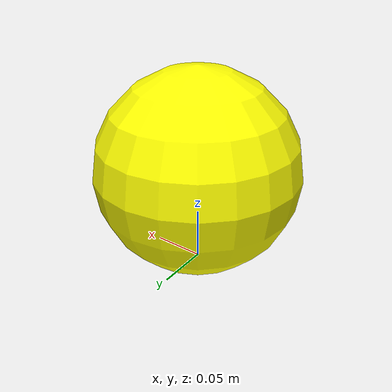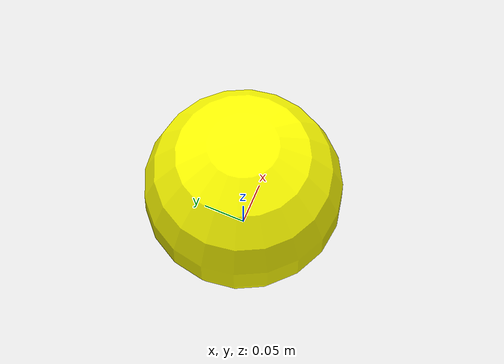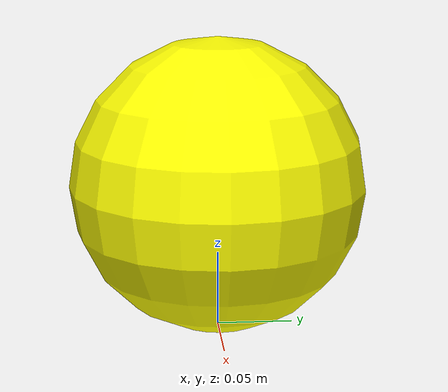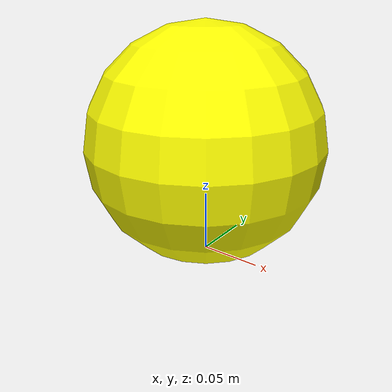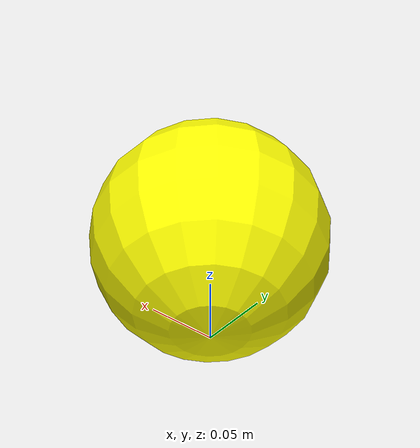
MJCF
<mujoco model="ball_description">

    <default>
        <geom condim="6" priority="1" friction="0.5 0.001 0.001" />
    </default>

    <asset>
        <material name="ball" rgba="1 1 0 1"/>
    </asset>

    <worldbody>
        <body name="ball" pos="0 0 0.097" euler='0 0 0'>
            <inertial pos="0 0 0" mass="0.318" fullinertia='0.001192 0.001192 0.001192 0.0 0.0 0.0' />
            <geom name="ball_geom" type="sphere" size="0.097" material="ball" group="0" solref="-9000 -10"/>
        </body>
    </worldbody>
</mujoco>
